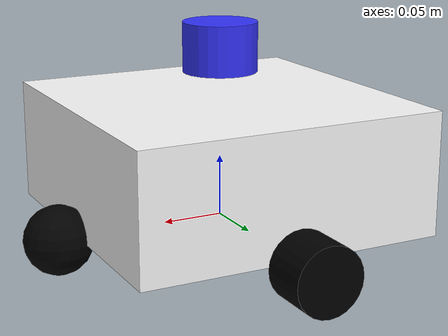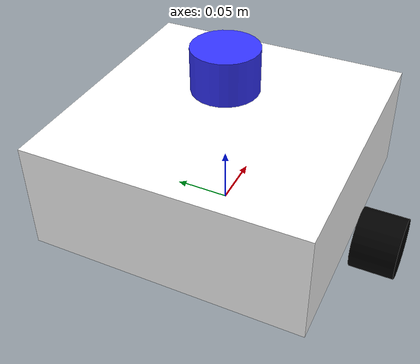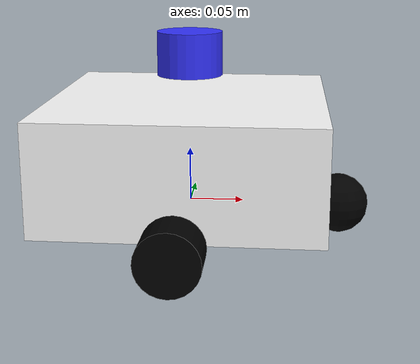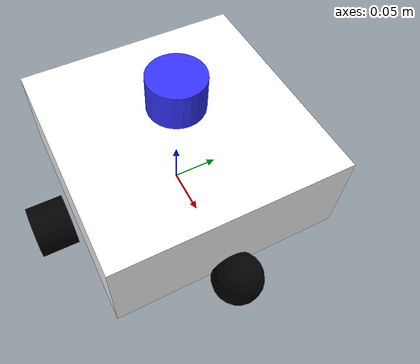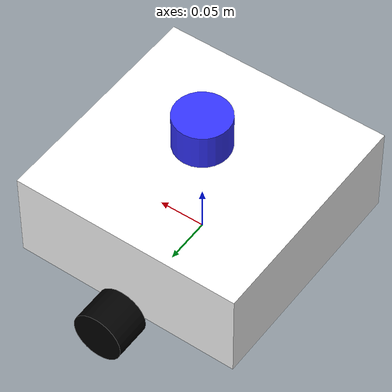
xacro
<?xml version="1.0"?>
<!-- my_diff_drive.urdf.xacro -->
<robot name="my_diff_drive_robot" xmlns:xacro="http://ros.org/wiki/xacro">

  <!-- Include macros by relative path (assumes they are in the same folder) -->
  <xacro:include filename="inertial_macros.xacro" />
  <xacro:include filename="lidar.xacro" />

  <!-- Materials -->
  <material name="white">
    <color rgba="1 1 1 1" />
  </material>
  <material name="black">
    <color rgba="0 0 0 1" />
  </material>
  <material name="blue">
    <color rgba="0.2 0.2 1 1" />
  </material>

  <!-- Base Link -->
  <link name="base_link" />

  <!-- Chassis -->
  <joint name="chassis_joint" type="fixed">
    <parent link="base_link" />
    <child link="chassis" />
    <origin xyz="0 0 0" />
  </joint>

  <link name="chassis">
    <visual>
      <origin xyz="0 0 0.05" />
      <geometry>
        <box size="0.25 0.25 0.10" />
      </geometry>
      <material name="white" />
    </visual>
    <collision>
      <origin xyz="0 0 0.05" />
      <geometry>
        <box size="0.25 0.25 0.10" />
      </geometry>
    </collision>
    <!-- Use your inertial macro -->
    <xacro:inertial_box mass="0.5" x="0.25" y="0.25" z="0.10">
      <origin xyz="0 0 0.05" />
    </xacro:inertial_box>
  </link>

  <!-- Left Wheel -->
  <link name="left_wheel_link">
    <visual>
      <geometry>
        <cylinder radius="0.0275" length="0.04" />
      </geometry>
      <material name="black" />
    </visual>
    <collision>
      <geometry>
        <cylinder radius="0.0275" length="0.04" />
      </geometry>
    </collision>
    <xacro:inertial_cylinder mass="0.1" length="0.04" radius="0.05">
      <origin xyz="0 0 0" />
    </xacro:inertial_cylinder>
  </link>

  <joint name="left_wheel_joint" type="continuous">
    <parent link="base_link" />
    <child link="left_wheel_link" />
    <origin xyz="0 0.150 0" rpy="-${pi/2} 0 0" />
    <axis xyz="0 0 1" />
    <dynamics damping="0.5" friction="10.0" />
  </joint>

  <!-- Right Wheel -->
  <link name="right_wheel_link">
    <visual>
      <geometry>
        <cylinder radius="0.0275" length="0.04" />
      </geometry>
      <material name="black" />
    </visual>
    <collision>
      <geometry>
        <cylinder radius="0.0275" length="0.04" />
      </geometry>
    </collision>
    <xacro:inertial_cylinder mass="0.1" length="0.04" radius="0.05">
      <origin xyz="0 0 0" />
    </xacro:inertial_cylinder>
  </link>

  <joint name="right_wheel_joint" type="continuous">
    <parent link="base_link" />
    <child link="right_wheel_link" />
    <origin xyz="0 -0.15 0" rpy="${pi/2} 0 0" />
    <axis xyz="0 0 -1" />
    <dynamics damping="0.5" friction="10.0" />
  </joint>

  <!-- Caster Wheel -->
  <joint name="caster_wheel_joint" type="fixed">
    <parent link="chassis" />
    <child link="caster_wheel_link" />
    <origin xyz="0.14 0 0" />
  </joint>

  <link name="caster_wheel_link">
    <visual>
      <geometry>
        <sphere radius="0.0275" />
      </geometry>
      <material name="black" />
    </visual>
    <collision>
      <geometry>
        <sphere radius="0.0275" />
      </geometry>
    </collision>
    <xacro:inertial_sphere mass="0.1" radius="0.05">
      <origin xyz="0 0 0" />
    </xacro:inertial_sphere>
  </link>

  <gazebo reference="caster_wheel_link">
    <mu1 value="0.0" />
    <mu2 value="0.0" />
  </gazebo>

  <!-- Insert the LiDAR sensor macro (above the chassis) -->
  <xacro:laser parent_link="base_link" />

  <!-- Publish Joint States -->
  <gazebo>
    <plugin name="joint_state_publisher" filename="libgazebo_ros_joint_state_publisher.so">
      <always_publish>true</always_publish>
      <publish_default_positions>true</publish_default_positions>

      <ros>
        <remapping>~/out:=joint_states</remapping>
      </ros>
      <update_rate>30</update_rate>
      <joint_name>left_wheel_joint</joint_name>
      <joint_name>right_wheel_joint</joint_name>
    </plugin>
  </gazebo>

  <!-- Diff Drive Plugin -->
  <gazebo>
    <plugin name="diff_drive_controller" filename="libgazebo_ros_diff_drive.so">
      <left_joint>left_wheel_joint</left_joint>
      <right_joint>right_wheel_joint</right_joint>
      <command_topic>cmd_vel</command_topic>
      <odometry_topic>odom</odometry_topic>
      <odometry_frame>odom</odometry_frame>
      <publish_odom>true</publish_odom>
      <publish_odom_tf>true</publish_odom_tf>
      <publish_wheel_tf>true</publish_wheel_tf>
      <robot_base_frame>base_link</robot_base_frame>
      <wheel_separation>0.35</wheel_separation>
      <wheel_diameter>0.1</wheel_diameter>
      <wheel_radius>0.05</wheel_radius>
      <max_wheel_torque>200</max_wheel_torque>
      <max_wheel_acceleration>10.0</max_wheel_acceleration>
      <update_rate>50</update_rate>
      <publish_tf>true</publish_tf>
    </plugin>
  </gazebo>

</robot>

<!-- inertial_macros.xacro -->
<robot xmlns:xacro="http://ros.org/wiki/xacro" >

  <!-- Sphere inertia -->
  <xacro:macro name="inertial_sphere" params="mass radius *origin">
    <inertial>
      <xacro:insert_block name="origin"/>
      <mass value="${mass}"/>
      <inertia ixx="${(2/5)*mass*(radius*radius)}" ixy="0.0" ixz="0.0"
               iyy="${(2/5)*mass*(radius*radius)}" iyz="0.0"
               izz="${(2/5)*mass*(radius*radius)}"/>
    </inertial>
  </xacro:macro>

  <!-- Box inertia -->
  <xacro:macro name="inertial_box" params="mass x y z *origin">
    <inertial>
      <xacro:insert_block name="origin"/>
      <mass value="${mass}"/>
      <inertia ixx="${(1/12)*mass*(y*y+z*z)}" ixy="0.0" ixz="0.0"
               iyy="${(1/12)*mass*(x*x+z*z)}" iyz="0.0"
               izz="${(1/12)*mass*(x*x+y*y)}"/>
    </inertial>
  </xacro:macro>

  <!-- Cylinder inertia -->
  <xacro:macro name="inertial_cylinder" params="mass length radius *origin">
    <inertial>
      <xacro:insert_block name="origin"/>
      <mass value="${mass}"/>
      <inertia ixx="${(1/12)*mass*(3*radius*radius + length*length)}" ixy="0.0" ixz="0.0"
               iyy="${(1/12)*mass*(3*radius*radius + length*length)}" iyz="0.0"
               izz="${(1/2)*mass*(radius*radius)}"/>
    </inertial>
  </xacro:macro>

</robot>

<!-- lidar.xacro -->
<!-- lidar xacro -->
<robot xmlns:xacro="http://ros.org/wiki/xacro">

  <xacro:macro name="laser" params="parent_link">
    <link name="lidar_link">
      <visual>
        <geometry>
          <cylinder radius="0.03" length="0.04" />
        </geometry>
        <material name="blue" />
      </visual>
      <collision>
        <geometry>
          <cylinder radius="0.03" length="0.04" />
        </geometry>
      </collision>
    </link>

    <joint name="lidar_joint" type="fixed">
      <parent link="${parent_link}" />
      <child link="lidar_link" />
      <origin xyz="0 0 0.14" />
    </joint>

    <!-- The Gazebo sensor definition attached to lidar_link -->
    <gazebo reference="lidar_link">

      <sensor name="lidar" type="ray">
        <pose>0 0 0 0 0 0</pose>
        <always_on>true</always_on>
        <visualize>true</visualize>
        <update_rate>5</update_rate>
        <ray>
          <scan>
            <horizontal>
              <samples>720</samples>
              <min_angle>-3.14</min_angle>
              <max_angle>3.14</max_angle>
            </horizontal>
          </scan>
          <range>
            <min>0.1</min>
            <max>10.0</max>
            <resolution>0.015000</resolution>
          </range>
          <noise>
            <type>gaussian</type>
            <mean>0.0</mean>
            <stddev>0.015</stddev>
          </noise>
        </ray>
        <plugin name="scan" filename="libgazebo_ros_ray_sensor.so">
          <ros>
            <remapping>~/out:=scan</remapping>
          </ros>
          <output_type>sensor_msgs/LaserScan</output_type>
          <frame_name>lidar_link</frame_name>
        </plugin>
      </sensor>
    </gazebo>
  </xacro:macro>

</robot>
